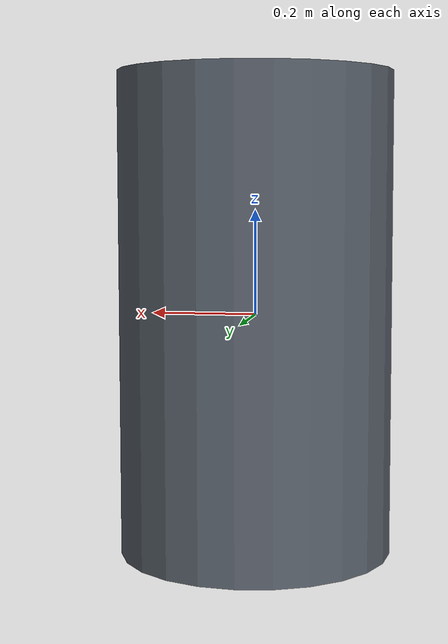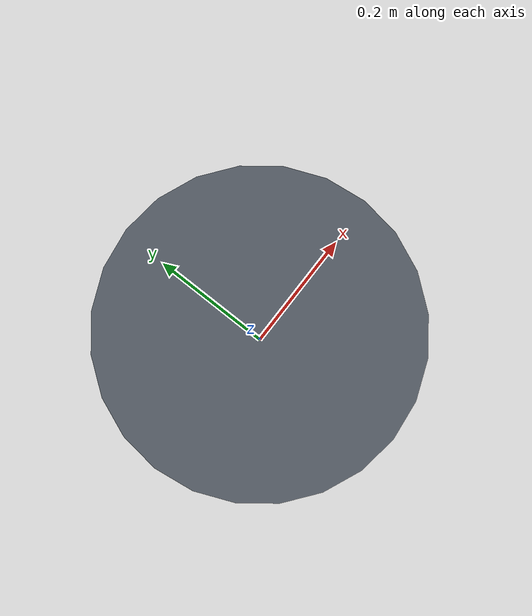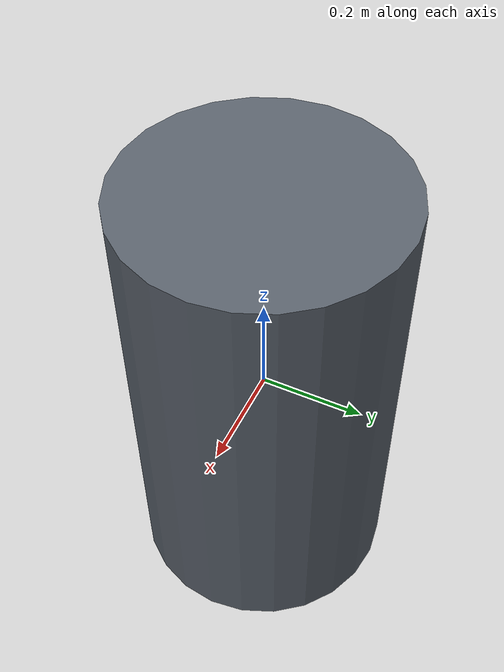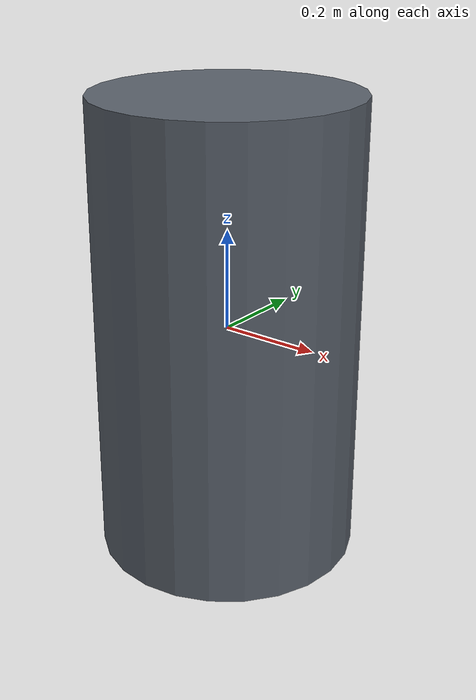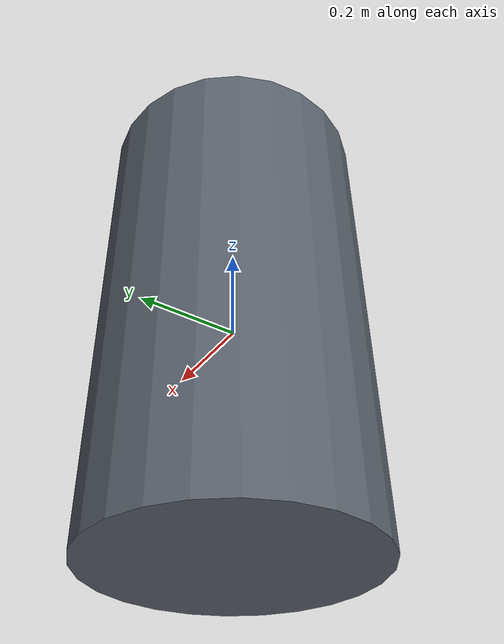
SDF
<?xml version="1.0"?>
<sdf version="1.6">
  <model name="office_chair">
    <static>true</static>
    <link name="link">
      <collision name="col">
        <geometry>
          <cylinder>
            <radius>0.26</radius>
            <length>0.92</length>
          </cylinder>
        </geometry>
      </collision>
      <visual name="vis">
        <geometry>
          <cylinder>
            <radius>0.26</radius>
            <length>0.92</length>
          </cylinder>
        </geometry>
        <material>
          <ambient>0.35 0.38 0.42 1</ambient>
          <diffuse>0.35 0.38 0.42 1</diffuse>
        </material>
      </visual>
    </link>
  </model>
</sdf>
